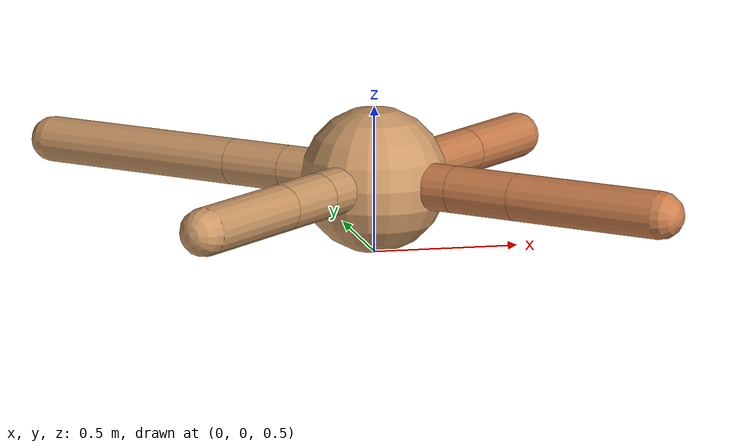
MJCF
<mujoco model="ant">
  <compiler angle="degree" coordinate="local" inertiafromgeom="true" />
  <option integrator="RK4" timestep="0.01" />
  <custom>
    <numeric data="0.0 0.0 0.55 1.0 0.0 0.0 0.0 0.0 1.0 0.0 -1.0 0.0 -1.0 0.0 1.0" name="init_qpos" />
  </custom>
  <default>
    <joint armature="1" damping="1" limited="true" />
    <geom conaffinity="0" condim="3" density="5.0" friction="1.5 0.1 0.1" margin="0.01" rgba="0.8 0.6 0.4 1" />
  </default>
  <worldbody>
    <body name="torso" pos="0 0 0.75">
      <geom name="torso_geom" pos="0 0 0" size="0.25" type="sphere" />

      <body name="front_left_leg" pos="0 0 0">
        <geom fromto="0.0 0.0 0.0 0.2153518322131237 0.2153518322131237 0.0" name="aux_1_geom" size="0.08" type="capsule" rgba=".8 .5 .3 1" />
        <body name="aux_1" pos="0.2153518322131237 0.2153518322131237 0.0">
          <joint axis="0 0 1" name="hip_1" pos="0.0 0.0 0.0" range="-40 40" type="hinge" />
          <geom fromto="0.0 0.0 0.0 0.19936950621704802 0.19936950621704802 0.0" name="left_leg_geom" size="0.08" type="capsule" rgba=".8 .5 .3 1" />
          <body pos="0.19936950621704802 0.19936950621704802 0.0" name="front_left_foot">
            <joint axis="-1 1 0" name="ankle_1" pos="0.0 0.0 0.0" range="30 100" type="hinge" />
            <geom fromto="0.0 0.0 0.0 0.2510952798329415 0.2510952798329415 0.0" name="left_ankle_geom" size="0.08" type="capsule" rgba=".8 .5 .3 1" />
          </body>
        </body>
      </body>
      <body name="front_right_leg" pos="0 0 0">
        <geom fromto="0.0 0.0 0.0 -0.24600681011035663 0.24600681011035663 0.0" name="aux_2_geom" size="0.08" type="capsule" />
        <body name="aux_2" pos="-0.24600681011035663 0.24600681011035663 0.0">
          <joint axis="0 0 1" name="hip_2" pos="0.0 0.0 0.0" range="-40 40" type="hinge" />
          <geom fromto="0.0 0.0 0.0 -0.1576866886648355 0.1576866886648355 0.0" name="right_leg_geom" size="0.08" type="capsule" />
          <body pos="-0.1576866886648355 0.1576866886648355 0.0" name="front_right_foot">
            <joint axis="1 1 0" name="ankle_2" pos="0.0 0.0 0.0" range="-100 -30" type="hinge" />
            <geom fromto="0.0 0.0 0.0 -0.5442450504487943 0.5442450504487943 0.0" name="right_ankle_geom" size="0.08" type="capsule" />
          </body>
        </body>
      </body>
      <body name="left_back_leg" pos="0 0 0">
        <geom fromto="0.0 0.0 0.0 -0.2487202516386301 -0.2487202516386301 0.0" name="aux_3_geom" size="0.08" type="capsule" />
        <body name="aux_3" pos="-0.2487202516386301 -0.2487202516386301 0.0">
          <joint axis="0 0 1" name="hip_3" pos="0.0 0.0 0.0" range="-40 40" type="hinge" />
          <geom fromto="0.0 0.0 0.0 -0.15738833269282893 -0.15738833269282893 0.0" name="back_leg_geom" size="0.08" type="capsule" />
          <body pos="-0.15738833269282893 -0.15738833269282893 0.0" name="left_back_foot">
            <joint axis="-1 1 0" name="ankle_3" pos="0.0 0.0 0.0" range="-100 -30" type="hinge" />
            <geom fromto="0.0 0.0 0.0 -0.31419846132740314 -0.31419846132740314 0.0" name="third_ankle_geom" size="0.08" type="capsule" />
          </body>
        </body>
      </body>
      <body name="right_back_leg" pos="0 0 0">
        <geom fromto="0.0 0.0 0.0 0.22658424913248007 -0.22658424913248007 0.0" name="aux_4_geom" size="0.08" type="capsule" rgba=".8 .5 .3 1" />
        <body name="aux_4" pos="0.22658424913248007 -0.22658424913248007 0.0">
          <joint axis="0 0 1" name="hip_4" pos="0.0 0.0 0.0" range="-40 40" type="hinge" />
          <geom fromto="0.0 0.0 0.0 0.16973482090326564 -0.16973482090326564 0.0" name="rightback_leg_geom" size="0.08" type="capsule" rgba=".8 .5 .3 1" />
          <body pos="0.16973482090326564 -0.16973482090326564 0.0" name="right_back_foot">
            <joint axis="1 1 0" name="ankle_4" pos="0.0 0.0 0.0" range="30 100" type="hinge" />
            <geom fromto="0.0 0.0 0.0 0.3840384883139639 -0.3840384883139639 0.0" name="fourth_ankle_geom" size="0.08" type="capsule" rgba=".8 .5 .3 1" />
          </body>
        </body>
      </body>
    </body>
  </worldbody>
  <actuator>
    <motor ctrllimited="true" ctrlrange="-1.0 1.0" joint="hip_4" gear="150" />
    <motor ctrllimited="true" ctrlrange="-1.0 1.0" joint="ankle_4" gear="150" />
    <motor ctrllimited="true" ctrlrange="-1.0 1.0" joint="hip_1" gear="150" />
    <motor ctrllimited="true" ctrlrange="-1.0 1.0" joint="ankle_1" gear="150" />
    <motor ctrllimited="true" ctrlrange="-1.0 1.0" joint="hip_2" gear="150" />
    <motor ctrllimited="true" ctrlrange="-1.0 1.0" joint="ankle_2" gear="150" />
    <motor ctrllimited="true" ctrlrange="-1.0 1.0" joint="hip_3" gear="150" />
    <motor ctrllimited="true" ctrlrange="-1.0 1.0" joint="ankle_3" gear="150" />
  </actuator>
</mujoco>
